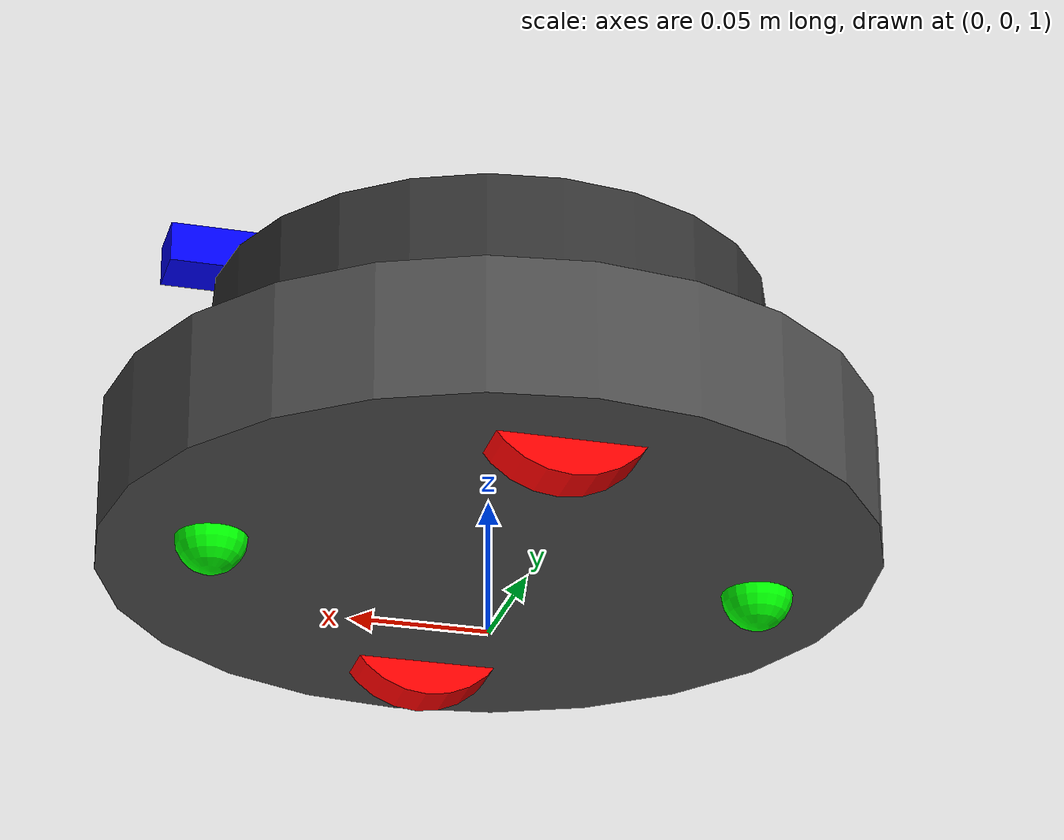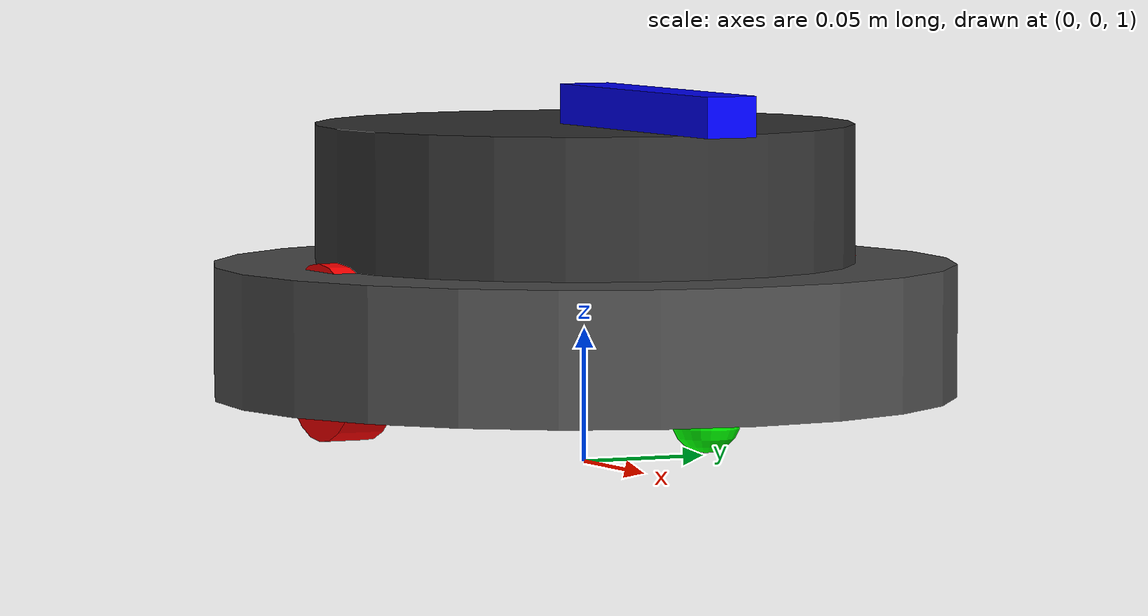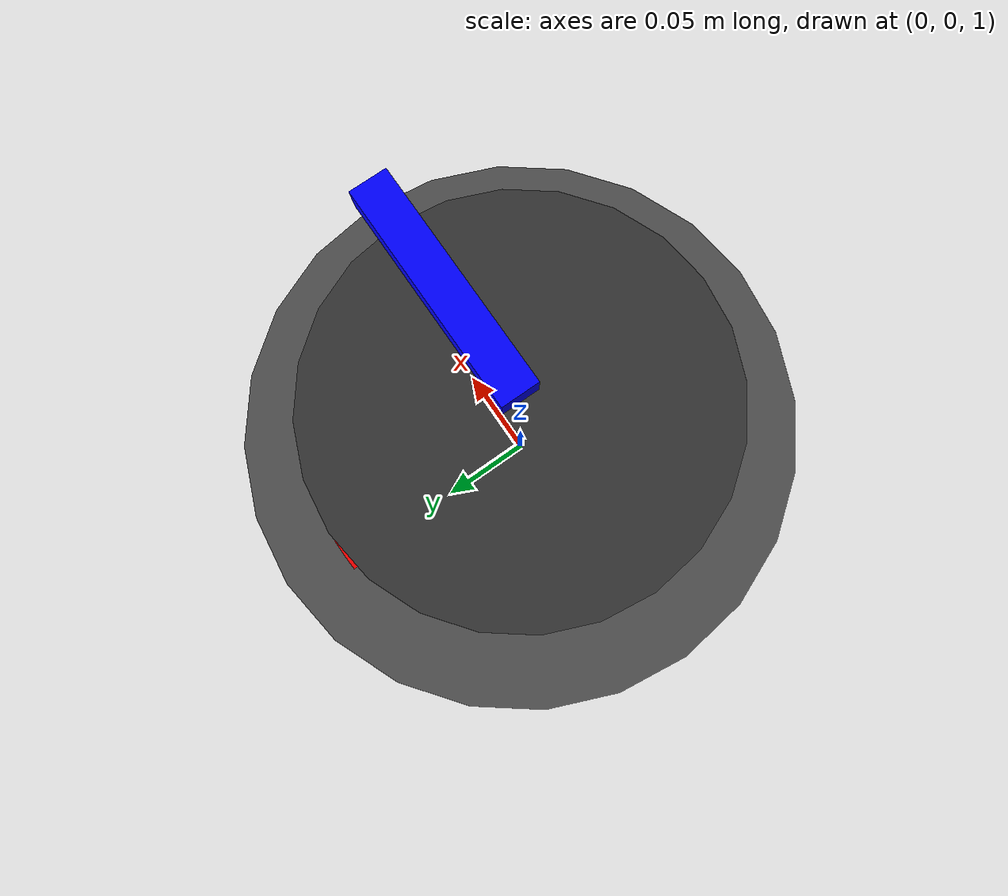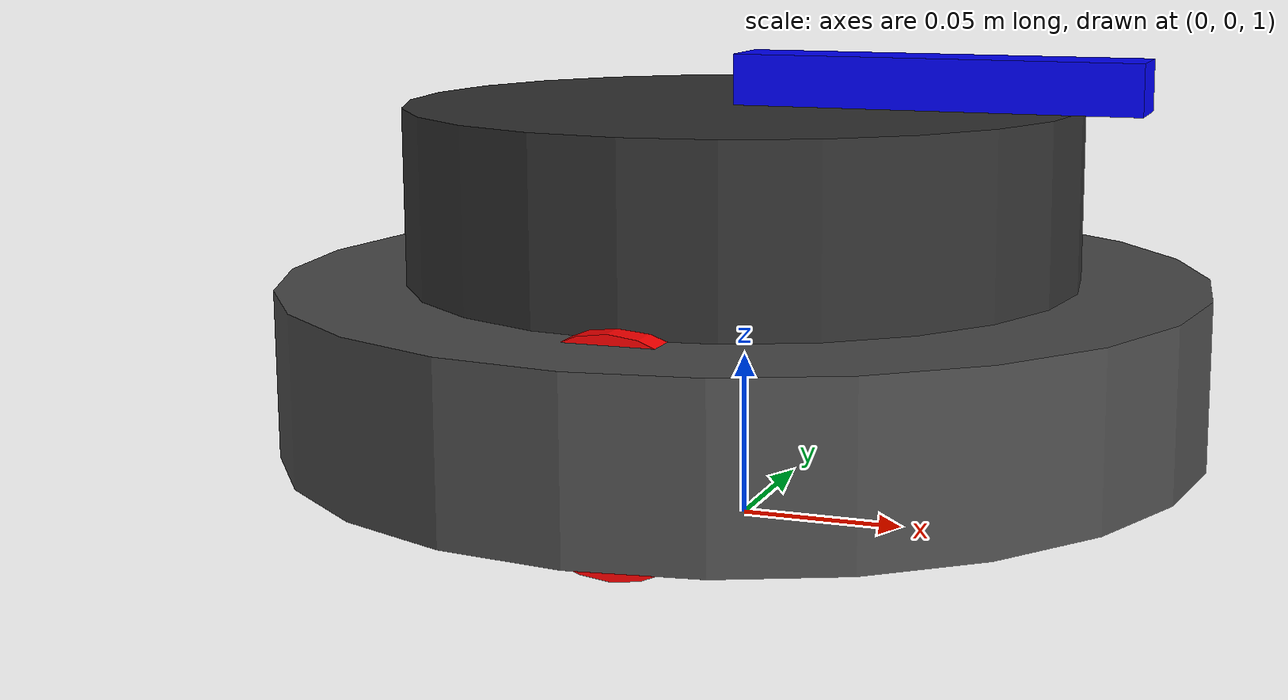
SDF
<?xml version="1.0" ?>
<sdf version="1.8">
    <model name='vehicle_blue' canonical_link='chassis'>
        <pose>0 0 1 0 0 0</pose>   <!--the pose is relative to the world by default-->

        <!--chassis-->
        <link name='chassis'>
            <pose relative_to='__model__'>0 0 0.05 0 0 0</pose>
            <inertial> <!--inertial properties of the link mass, inertia matix-->
                <mass>1000</mass>
                <inertia>
                    <ixx>0.095329</ixx>
                    <ixy>0</ixy>
                    <ixz>0</ixz>
                    <iyy>0.381317</iyy>
                    <iyz>0</iyz>
                    <izz>0.476646</izz>
                </inertia>
            </inertial>
            <visual name="base_visual">
                <pose>0 0 0 0 0 0</pose>
                <geometry>
                    <cylinder>
                        <radius>0.14</radius>
                        <length>0.05</length>
                    </cylinder>
                </geometry>
                <material>
                    <ambient>0.3 0.3 0.3 1.0</ambient>
                    <diffuse>0.3 0.3 0.3 1.0</diffuse>
                </material>
            </visual>
            <collision name='collision'>
                <geometry>
                    <cylinder>
                        <radius>0.14</radius>
                        <length>0.05</length>
                    </cylinder>
                </geometry>
            </collision>
        </link>

        <!--Left wheel-->
        <link name='left_wheel'>
            <pose relative_to="chassis">0 0.10 -0.005 -1.5707 0 0</pose> <!--angles are in radian-->
            <inertial>
                <mass>0.25</mass>
                <inertia>
                    <ixx>0.043333</ixx>
                    <ixy>0</ixy>
                    <ixz>0</ixz>
                    <iyy>0.043333</iyy>
                    <iyz>0</iyz>
                    <izz>0.08</izz>
                </inertia>
            </inertial>
            <visual name='visual'>
                <geometry>
                    <cylinder>
                        <radius>0.033</radius>
                        <length>0.018</length>
                    </cylinder>
                </geometry>
                <material>
                    <ambient>1.0 0.0 0.0 1</ambient>
                    <diffuse>1.0 0.0 0.0 1</diffuse>
                    <specular>1.0 0.0 0.0 1</specular>
                </material>
            </visual>
            <collision name='collision'>
                <geometry>
                    <cylinder>
                        <radius>0.033</radius>
                        <length>0.018</length>
                    </cylinder>
                </geometry>
                <surface>
                    <friction>
                        <ode>
                        <mu>1.0</mu>
                        <mu2>1.0</mu2>
                        </ode>
                    </friction>
                </surface>
            </collision>
        </link>

        <!--The same as left wheel but with different position-->
        <link name='right_wheel'>
            <pose relative_to="chassis">0 -0.10 -0.005 -1.5707 0 0</pose> <!--angles are in radian-->
            <inertial>
                <mass>0.25</mass>
                <inertia>
                    <ixx>0.043333</ixx>
                    <ixy>0</ixy>
                    <ixz>0</ixz>
                    <iyy>0.043333</iyy>
                    <iyz>0</iyz>
                    <izz>0.08</izz>
                </inertia>
            </inertial>
            <visual name='visual'>
                <geometry>
                    <cylinder>
                        <radius>0.033</radius>
                        <length>0.018</length>
                    </cylinder>
                </geometry>
                <material>
                    <ambient>1.0 0.0 0.0 1</ambient>
                    <diffuse>1.0 0.0 0.0 1</diffuse>
                    <specular>1.0 0.0 0.0 1</specular>
                </material>
            </visual>
            <collision name='collision'>
                <geometry>
                    <cylinder>
                        <radius>0.033</radius>
                        <length>0.018</length>
                    </cylinder>
                </geometry>
                <surface>
                    <friction>
                        <ode>
                        <mu>1.0</mu>
                        <mu2>1.0</mu2>
                        </ode>
                    </friction>
                </surface>
            </collision>
        </link>

        <!--arbitrary frame-->
        <frame name="caster_frame" attached_to='chassis'>
            <pose>0.10 0 -0.025 0 0 0</pose>
        </frame>

        <!--caster wheel-->
        <link name='caster'>
            <pose relative_to='caster_frame'/>
            <inertial>
                <mass>0.02</mass>
                <inertia>
                    <ixx>0.016</ixx>
                    <ixy>0</ixy>
                    <ixz>0</ixz>
                    <iyy>0.016</iyy>
                    <iyz>0</iyz>
                    <izz>0.016</izz>
                </inertia>
            </inertial>
            <visual name='visual'>
                <geometry>
                    <sphere>
                        <radius>0.013</radius>
                    </sphere>
                </geometry>
                <material>
                    <ambient>0.0 1 0.0 1</ambient>
                    <diffuse>0.0 1 0.0 1</diffuse>
                    <specular>0.0 1 0.0 1</specular>
                </material>
            </visual>
            <collision name='collision'>
                <geometry>
                    <sphere>
                        <radius>0.013</radius>
                    </sphere>
                </geometry>
                <surface>
                    <friction>
                        <ode>
                            <mu>0.0</mu>
                            <mu2>0.0</mu2>
                        </ode>
                    </friction>
                </surface>
            </collision>
        </link>

        <!--rear caster frame-->
        <frame name="rear_caster_frame" attached_to='chassis'>
            <pose>-0.10 0 -0.025 0 0 0</pose>
        </frame>

        <!--rear caster wheel-->
        <link name='rear_caster'>
            <pose relative_to='rear_caster_frame'/>
            <inertial>
                <mass>0.02</mass>
                <inertia>
                    <ixx>0.016</ixx>
                    <ixy>0</ixy>
                    <ixz>0</ixz>
                    <iyy>0.016</iyy>
                    <iyz>0</iyz>
                    <izz>0.016</izz>
                </inertia>
            </inertial>
            <visual name='visual'>
                <geometry>
                    <sphere>
                        <radius>0.013</radius>
                    </sphere>
                </geometry>
                <material>
                    <ambient>0.0 1 0.0 1</ambient>
                    <diffuse>0.0 1 0.0 1</diffuse>
                    <specular>0.0 1 0.0 1</specular>
                </material>
            </visual>
            <collision name='collision'>
                <geometry>
                    <sphere>
                        <radius>0.013</radius>
                    </sphere>
                </geometry>
                <surface>
                    <friction>
                        <ode>
                            <mu>0.0</mu>
                            <mu2>0.0</mu2>
                        </ode>
                    </friction>
                </surface>
            </collision>
        </link>

        <!--left wheel joint-->
        <joint name='left_wheel_joint' type='revolute'>
            <pose relative_to='left_wheel'/>
            <parent>chassis</parent>
            <child>left_wheel</child>
            <axis>
                <xyz expressed_in='__model__'>0 1 0</xyz> <!--can be descired to any frame or even arbitrary frames-->
                <limit>
                    <lower>-1.79769e+308</lower>    <!--negative infinity-->
                    <upper>1.79769e+308</upper>     <!--positive infinity-->
                </limit>
            </axis>
        </joint>

        <!--right wheel joint-->
        <joint name='right_wheel_joint' type='revolute'>
            <pose relative_to='right_wheel'/>
            <parent>chassis</parent>
            <child>right_wheel</child>
            <axis>
                <xyz expressed_in='__model__'>0 1 0</xyz>
                <limit>
                    <lower>-1.79769e+308</lower>    <!--negative infinity-->
                    <upper>1.79769e+308</upper>     <!--positive infinity-->
                </limit>
            </axis>
        </joint>

        <!--caster wheel joint--> <!--pose defult value is the child-->
        <joint name='caster_wheel' type='ball'>
            <parent>chassis</parent>
            <child>caster</child>
            <axis>
                <xyz>0 0 1</xyz>
                <dynamics>
                    <damping>0.1</damping>
                </dynamics>
            </axis>
        </joint>

        <!--rear caster wheel joint-->
        <joint name='rear_caster_wheel' type='ball'>
            <parent>chassis</parent>
            <child>rear_caster</child>
            <axis>
                <xyz>0 0 1</xyz>
                <dynamics>
                    <damping>0.1</damping>
                </dynamics>
            </axis>
        </joint>

        <plugin
            filename="gz-sim-diff-drive-system"
            name="gz::sim::systems::DiffDrive">
            <left_joint>left_wheel_joint</left_joint>
            <right_joint>right_wheel_joint</right_joint>
            <wheel_separation>0.20</wheel_separation>
            <wheel_radius>0.033</wheel_radius>
            <odom_topic></odom_topic>
            <odom_publisher_frequency>0.0</odom_publisher_frequency>
            <topic>cmd_vel</topic>
        </plugin>

        <link name="base_scan">
            <pose relative_to="chassis">0 0 0.05 0 0 0</pose>
            <inertial>
                <inertia>
                <ixx>0.0001</ixx>
                <ixy>0.000</ixy>
                <ixz>0.000</ixz>
                <iyy>0.0001</iyy>
                <iyz>0.000</iyz>
                <izz>0.0001</izz>
                </inertia>
                <mass>0.114</mass>
            </inertial>

            <collision name="lidar_sensor_collision">
                <geometry>
                <cylinder>
                    <radius>0.1016</radius>
                    <length>0.055</length>
                </cylinder>
                </geometry>
            </collision>

            <visual name="lidar_sensor_visual">
                <geometry>
                    <cylinder>
                        <radius>0.1016</radius>
                        <length>0.055</length>
                    </cylinder>
                </geometry>
                <material>
                    <ambient>0.2 0.2 0.2 1.0</ambient>
                    <diffuse>0.2 0.2 0.2 1.0</diffuse>
                </material>
            </visual>
            <visual name="front_marker">
                <pose>0.06 0 0.035 0 0 0</pose>
                <geometry>
                    <box>
                        <size>0.12 0.020 0.015</size>
                    </box>
                </geometry>
                <material>
                    <ambient>0 0 1 1</ambient>
                    <diffuse>0 0 1 1</diffuse>
                </material>
            </visual>

            <sensor name="hls_lfcd_lds" type="gpu_lidar">
                <always_on>true</always_on>
                <visualize>true</visualize>
                <update_rate>20</update_rate>
                <topic>scan</topic>
                <frame_id>base_scan</frame_id>
                <lidar>
                    <scan>
                        <horizontal>
                        <samples>360</samples>
                        <resolution>1.000000</resolution>
                        <min_angle>0.000000</min_angle>
                        <max_angle>6.280000</max_angle>
                        </horizontal>
                    </scan>
                    <range>
                        <min>0.1</min>
                        <max>7</max>
                        <resolution>0.015000</resolution>
                    </range>
                    <noise>
                        <type>gaussian</type>
                        <mean>0.0</mean>
                        <stddev>0.01</stddev>
                    </noise>
                </lidar>
            </sensor>
        </link>

        <joint name="lidar_joint" type="fixed">
            <parent>chassis</parent>
            <child>base_scan</child>
            <axis>
                <xyz>0 0 1</xyz>
            </axis>
        </joint>

    </model>
</sdf>
